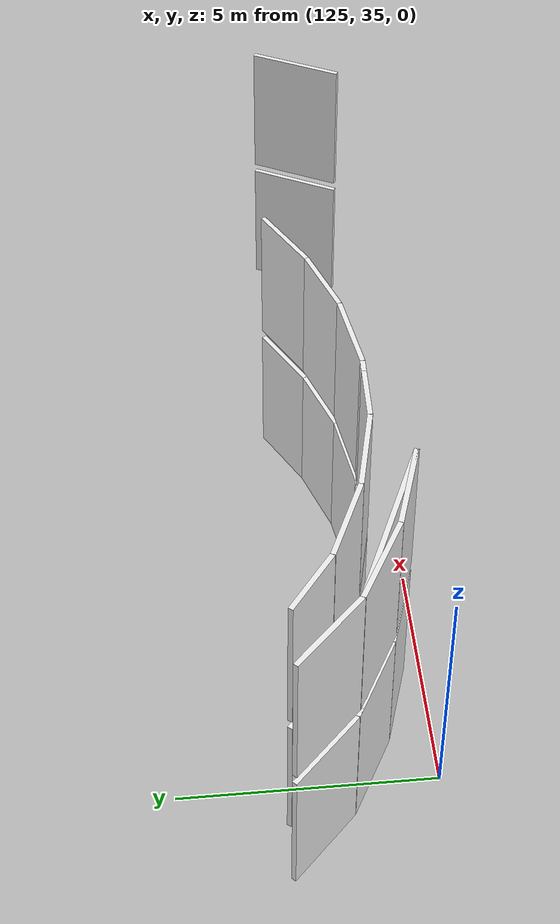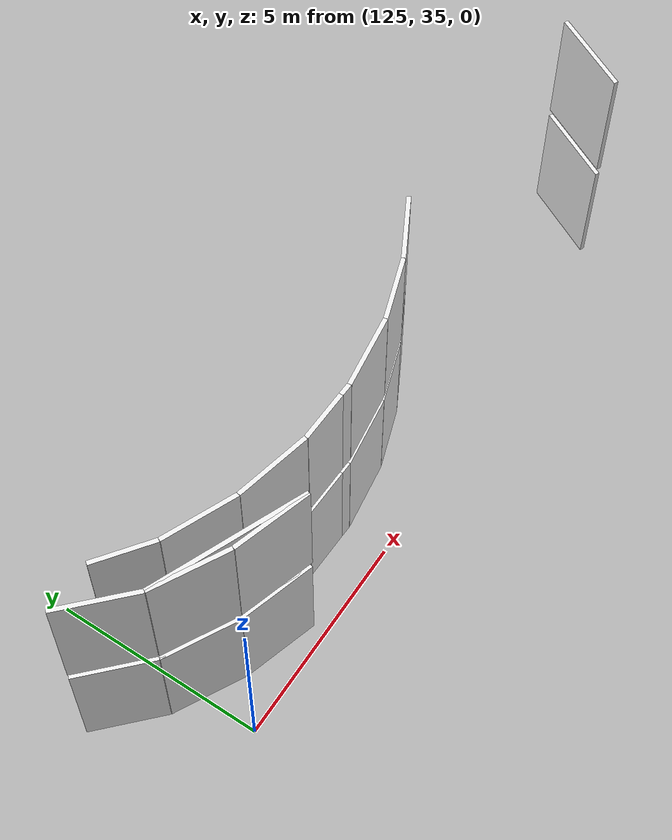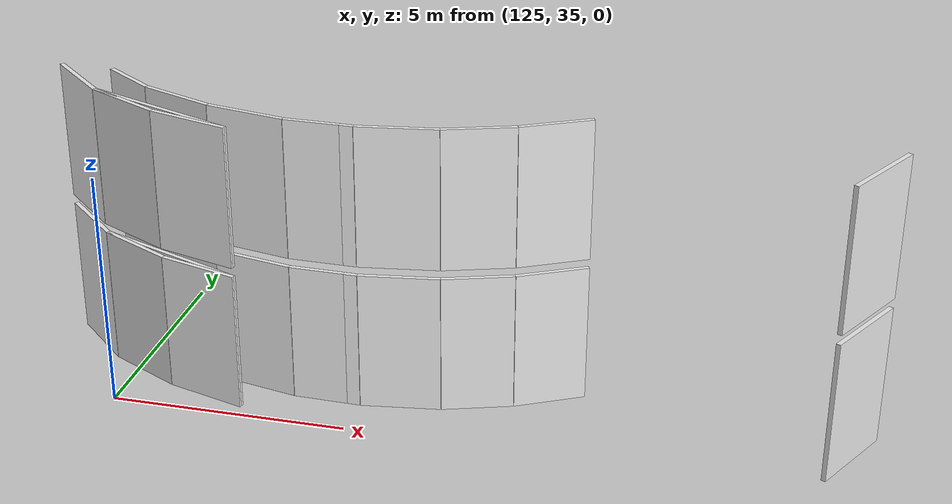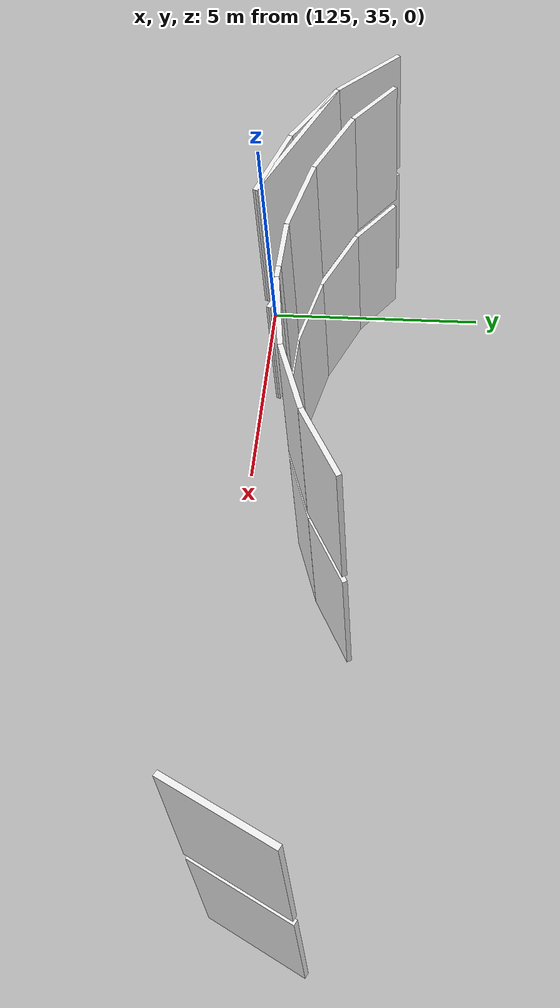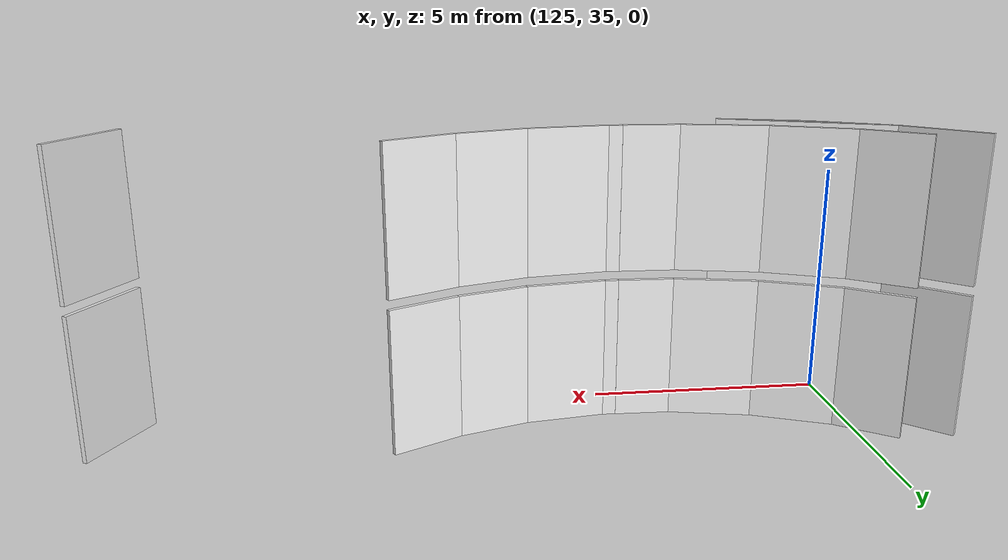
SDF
<sdf version="1.6">
 <world name="default">
  <model name="wall_124.8_37.5_0.0_link">
   <static>true</static>
   <pose>124.77999999999884 37.52000000001863 1.5 0 0 -0.6319742419690464</pose>
   <link name="link">
    <visual name="visual">
     <geometry><box><size>1.388092216176113 0.1 3</size></box></geometry>
     <material>
      <script><uri>file://media/materials/scripts/gazebo.material</uri><name>Gazebo/White</name></script>
     </material>
    </visual>
   </link>
  </model>
  <model name="wall_126.1_36.8_0.0_link">
   <static>true</static>
   <pose>126.13000000000466 36.77499999990687 1.5 0 0 -0.40106625021121617</pose>
   <link name="link">
    <visual name="visual">
     <geometry><box><size>1.716187635361509 0.1 3</size></box></geometry>
     <material>
      <script><uri>file://media/materials/scripts/gazebo.material</uri><name>Gazebo/White</name></script>
     </material>
    </visual>
   </link>
  </model>
  <model name="wall_127.8_36.3_0.0_link">
   <static>true</static>
   <pose>127.76999999998952 36.25499999988824 1.5 0 0 -0.21430488386451166</pose>
   <link name="link">
    <visual name="visual">
     <geometry><box><size>1.739798838981761 0.1 3</size></box></geometry>
     <material>
      <script><uri>file://media/materials/scripts/gazebo.material</uri><name>Gazebo/White</name></script>
     </material>
    </visual>
   </link>
  </model>
  <model name="wall_129.2_36.1_0.0_link">
   <static>true</static>
   <pose>129.20000000001164 36.05499999993481 1.5 0 0 -0.025856305182021404</pose>
   <link name="link">
    <visual name="visual">
     <geometry><box><size>1.1603878662168654 0.1 3</size></box></geometry>
     <material>
      <script><uri>file://media/materials/scripts/gazebo.material</uri><name>Gazebo/White</name></script>
     </material>
    </visual>
   </link>
  </model>
  <model name="wall_129.9_36.0_0.0_link">
   <static>true</static>
   <pose>129.9200000000128 36.03499999991618 1.5 0 0 -0.035699113546877645</pose>
   <link name="link">
    <visual name="visual">
     <geometry><box><size>0.2801785145008318 0.1 3</size></box></geometry>
     <material>
      <script><uri>file://media/materials/scripts/gazebo.material</uri><name>Gazebo/White</name></script>
     </material>
    </visual>
   </link>
  </model>
  <model name="wall_130.9_36.1_0.0_link">
   <static>true</static>
   <pose>130.88999999998487 36.14999999990687 1.5 0 0 0.14358339378054572</pose>
   <link name="link">
    <visual name="visual">
     <geometry><box><size>1.6772596698252356 0.1 3</size></box></geometry>
     <material>
      <script><uri>file://media/materials/scripts/gazebo.material</uri><name>Gazebo/White</name></script>
     </material>
    </visual>
   </link>
  </model>
  <model name="wall_132.4_36.5_0.0_link">
   <static>true</static>
   <pose>132.42999999999302 36.514999999897555 1.5 0 0 0.33227648126688747</pose>
   <link name="link">
    <visual name="visual">
     <geometry><box><size>1.5021651040686979 0.1 3</size></box></geometry>
     <material>
      <script><uri>file://media/materials/scripts/gazebo.material</uri><name>Gazebo/White</name></script>
     </material>
    </visual>
   </link>
  </model>
  <model name="wall_133.8_37.1_0.0_link">
   <static>true</static>
   <pose>133.82000000000698 37.12999999988824 1.5 0 0 0.4983157943414261</pose>
   <link name="link">
    <visual name="visual">
     <geometry><box><size>1.5482893787315108 0.1 3</size></box></geometry>
     <material>
      <script><uri>file://media/materials/scripts/gazebo.material</uri><name>Gazebo/White</name></script>
     </material>
    </visual>
   </link>
  </model>
  <model name="wall_123.7_37.3_0.0_link">
   <static>true</static>
   <pose>123.72000000000116 37.34000000008382 1.5 0 0 -0.7617805082994406</pose>
   <link name="link">
    <visual name="visual">
     <geometry><box><size>1.7965522534480356 0.1 3</size></box></geometry>
     <material>
      <script><uri>file://media/materials/scripts/gazebo.material</uri><name>Gazebo/White</name></script>
     </material>
    </visual>
   </link>
  </model>
  <model name="wall_125.2_36.3_0.0_link">
   <static>true</static>
   <pose>125.16500000000815 36.300000000046566 1.5 0 0 -0.48603192948913904</pose>
   <link name="link">
    <visual name="visual">
     <geometry><box><size>1.798249148648044 0.1 3</size></box></geometry>
     <material>
      <script><uri>file://media/materials/scripts/gazebo.material</uri><name>Gazebo/White</name></script>
     </material>
    </visual>
   </link>
  </model>
  <model name="wall_126.8_35.6_0.0_link">
   <static>true</static>
   <pose>126.82000000000698 35.61999999987893 1.5 0 0 -0.2935889874231719</pose>
   <link name="link">
    <visual name="visual">
     <geometry><box><size>1.7968861955959423 0.1 3</size></box></geometry>
     <material>
      <script><uri>file://media/materials/scripts/gazebo.material</uri><name>Gazebo/White</name></script>
     </material>
    </visual>
   </link>
  </model>
  <model name="wall_140.0_36.3_0.0_link">
   <static>true</static>
   <pose>140.0 36.30499999993481 1.5 0 0 1.091454939073582</pose>
   <link name="link">
    <visual name="visual">
     <geometry><box><size>1.9948182874996538 0.1 3</size></box></geometry>
     <material>
      <script><uri>file://media/materials/scripts/gazebo.material</uri><name>Gazebo/White</name></script>
     </material>
    </visual>
   </link>
  </model>
  <model name="wall_126.0_36.0_0.0_link">
   <static>true</static>
   <pose>126.02499999999418 36.04000000003725 1.5 0 0 2.7517456035789243</pose>
   <link name="link">
    <visual name="visual">
     <geometry><box><size>3.578505274677758 0.1 3</size></box></geometry>
     <material>
      <script><uri>file://media/materials/scripts/gazebo.material</uri><name>Gazebo/White</name></script>
     </material>
    </visual>
   </link>
  </model>
  <model name="wall_124.8_37.5_3.2_link">
   <static>true</static>
   <pose>124.77999999999884 37.52000000001863 4.7 0 0 -0.6319742419690464</pose>
   <link name="link">
    <visual name="visual">
     <geometry><box><size>1.388092216176113 0.1 3</size></box></geometry>
     <material>
      <script><uri>file://media/materials/scripts/gazebo.material</uri><name>Gazebo/White</name></script>
     </material>
    </visual>
   </link>
  </model>
  <model name="wall_126.1_36.8_3.2_link">
   <static>true</static>
   <pose>126.13000000000466 36.77499999990687 4.7 0 0 -0.40106625021121617</pose>
   <link name="link">
    <visual name="visual">
     <geometry><box><size>1.716187635361509 0.1 3</size></box></geometry>
     <material>
      <script><uri>file://media/materials/scripts/gazebo.material</uri><name>Gazebo/White</name></script>
     </material>
    </visual>
   </link>
  </model>
  <model name="wall_127.8_36.3_3.2_link">
   <static>true</static>
   <pose>127.76999999998952 36.25499999988824 4.7 0 0 -0.21430488386451166</pose>
   <link name="link">
    <visual name="visual">
     <geometry><box><size>1.739798838981761 0.1 3</size></box></geometry>
     <material>
      <script><uri>file://media/materials/scripts/gazebo.material</uri><name>Gazebo/White</name></script>
     </material>
    </visual>
   </link>
  </model>
  <model name="wall_129.2_36.1_3.2_link">
   <static>true</static>
   <pose>129.20000000001164 36.05499999993481 4.7 0 0 -0.025856305182021404</pose>
   <link name="link">
    <visual name="visual">
     <geometry><box><size>1.1603878662168654 0.1 3</size></box></geometry>
     <material>
      <script><uri>file://media/materials/scripts/gazebo.material</uri><name>Gazebo/White</name></script>
     </material>
    </visual>
   </link>
  </model>
  <model name="wall_129.9_36.0_3.2_link">
   <static>true</static>
   <pose>129.9200000000128 36.03499999991618 4.7 0 0 -0.035699113546877645</pose>
   <link name="link">
    <visual name="visual">
     <geometry><box><size>0.2801785145008318 0.1 3</size></box></geometry>
     <material>
      <script><uri>file://media/materials/scripts/gazebo.material</uri><name>Gazebo/White</name></script>
     </material>
    </visual>
   </link>
  </model>
  <model name="wall_130.9_36.1_3.2_link">
   <static>true</static>
   <pose>130.88999999998487 36.14999999990687 4.7 0 0 0.14358339378054572</pose>
   <link name="link">
    <visual name="visual">
     <geometry><box><size>1.6772596698252356 0.1 3</size></box></geometry>
     <material>
      <script><uri>file://media/materials/scripts/gazebo.material</uri><name>Gazebo/White</name></script>
     </material>
    </visual>
   </link>
  </model>
  <model name="wall_132.4_36.5_3.2_link">
   <static>true</static>
   <pose>132.42999999999302 36.514999999897555 4.7 0 0 0.33227648126688747</pose>
   <link name="link">
    <visual name="visual">
     <geometry><box><size>1.5021651040686979 0.1 3</size></box></geometry>
     <material>
      <script><uri>file://media/materials/scripts/gazebo.material</uri><name>Gazebo/White</name></script>
     </material>
    </visual>
   </link>
  </model>
  <model name="wall_133.8_37.1_3.2_link">
   <static>true</static>
   <pose>133.82000000000698 37.12999999988824 4.7 0 0 0.4983157943414261</pose>
   <link name="link">
    <visual name="visual">
     <geometry><box><size>1.5482893787315108 0.1 3</size></box></geometry>
     <material>
      <script><uri>file://media/materials/scripts/gazebo.material</uri><name>Gazebo/White</name></script>
     </material>
    </visual>
   </link>
  </model>
  <model name="wall_123.7_37.3_3.2_link">
   <static>true</static>
   <pose>123.72000000000116 37.34000000008382 4.7 0 0 -0.7617805082994406</pose>
   <link name="link">
    <visual name="visual">
     <geometry><box><size>1.7965522534480356 0.1 3</size></box></geometry>
     <material>
      <script><uri>file://media/materials/scripts/gazebo.material</uri><name>Gazebo/White</name></script>
     </material>
    </visual>
   </link>
  </model>
  <model name="wall_125.2_36.3_3.2_link">
   <static>true</static>
   <pose>125.16500000000815 36.300000000046566 4.7 0 0 -0.48603192948913904</pose>
   <link name="link">
    <visual name="visual">
     <geometry><box><size>1.798249148648044 0.1 3</size></box></geometry>
     <material>
      <script><uri>file://media/materials/scripts/gazebo.material</uri><name>Gazebo/White</name></script>
     </material>
    </visual>
   </link>
  </model>
  <model name="wall_126.8_35.6_3.2_link">
   <static>true</static>
   <pose>126.82000000000698 35.61999999987893 4.7 0 0 -0.2935889874231719</pose>
   <link name="link">
    <visual name="visual">
     <geometry><box><size>1.7968861955959423 0.1 3</size></box></geometry>
     <material>
      <script><uri>file://media/materials/scripts/gazebo.material</uri><name>Gazebo/White</name></script>
     </material>
    </visual>
   </link>
  </model>
  <model name="wall_140.0_36.3_3.2_link">
   <static>true</static>
   <pose>140.0 36.30499999993481 4.7 0 0 1.091454939073582</pose>
   <link name="link">
    <visual name="visual">
     <geometry><box><size>1.9948182874996538 0.1 3</size></box></geometry>
     <material>
      <script><uri>file://media/materials/scripts/gazebo.material</uri><name>Gazebo/White</name></script>
     </material>
    </visual>
   </link>
  </model>
  <model name="wall_126.0_36.0_3.2_link">
   <static>true</static>
   <pose>126.02499999999418 36.04000000003725 4.7 0 0 2.7517456035789243</pose>
   <link name="link">
    <visual name="visual">
     <geometry><box><size>3.578505274677758 0.1 3</size></box></geometry>
     <material>
      <script><uri>file://media/materials/scripts/gazebo.material</uri><name>Gazebo/White</name></script>
     </material>
    </visual>
   </link>
  </model>
 </world>
</sdf>
